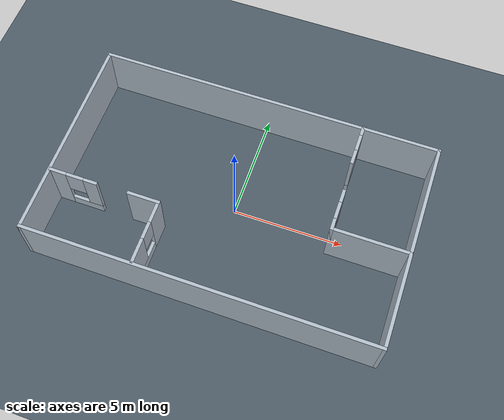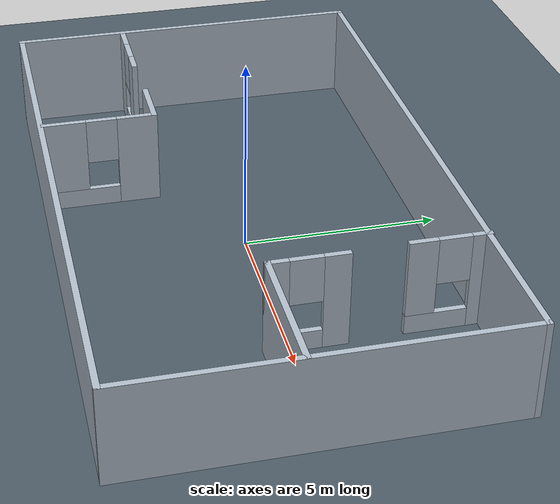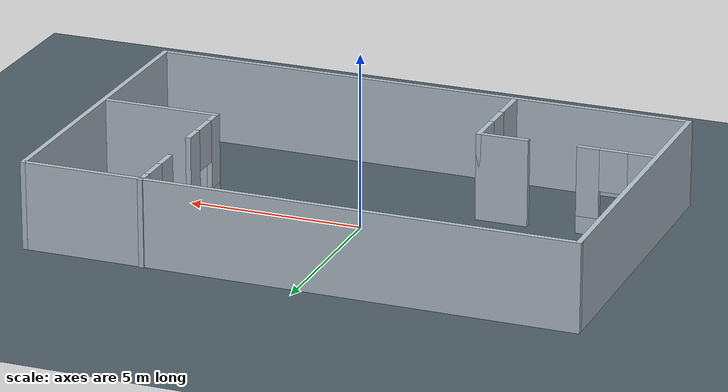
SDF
<sdf version="1.7">
 <world name="default">
  <physics name="1ms" type="ignored">
   <max_step_size>0.001</max_step_size>
   <real_time_factor>1.0</real_time_factor>
  </physics>
  <plugin filename="gz-sim-physics-system" name="gz::sim::systems::Physics"/>
  <plugin filename="gz-sim-sensors-system" name="gz::sim::systems::Sensors">
   <render_engine>ogre2</render_engine>
  </plugin>
  <plugin filename="gz-sim-user-commands-system" name="gz::sim::systems::UserCommands"/>
  <plugin filename="gz-sim-scene-broadcaster-system" name="gz::sim::systems::SceneBroadcaster"/>
  <light name="sun" type="directional">
   <pose>0 0 10 0 -0 0</pose>
   <diffuse>0.8 0.8 0.8 1</diffuse>
   <specular>0.2 0.2 0.2 1</specular>
   <attenuation>
    <range>1000</range>
    <constant>0.9</constant>
    <linear>0.01</linear>
    <quadratic>0.001</quadratic>
   </attenuation>
   <direction>-0.5 0.1 -0.9</direction>
   <spot><inner_angle>0</inner_angle><outer_angle>0</outer_angle><falloff>0</falloff></spot>
  </light>
  <model name="actor_tracking_proxy">
   <static>false</static>
   <pose>-4 2 0.85 0 0 0</pose>
   <link name="link">
    <gravity>false</gravity>
    <kinematic>true</kinematic>
    <collision name="collision">
     <geometry><box><size>0.45 0.45 1.7</size></box></geometry>
     <surface><contact><collide_bitmask>0</collide_bitmask></contact></surface>
    </collision>
   </link>
  </model>
  <model name="ground_plane">
   <static>1</static>
   <link name="link">
    <collision name="collision">
     <geometry><plane><normal>0 0 1</normal><size>100 100</size></plane></geometry>
     <surface><friction><ode><mu>100</mu><mu2>50</mu2></ode></friction></surface>
    </collision>
    <visual name="visual">
     <cast_shadows>0</cast_shadows>
     <geometry><plane><normal>0 0 1</normal><size>100 100</size></plane></geometry>
     <material>
      <ambient>0.16 0.20 0.22 1</ambient>
      <diffuse>0.30 0.36 0.40 1</diffuse>
      <specular>0.03 0.03 0.03 1</specular>
     </material>
    </visual>
   </link>
  </model>
  <gravity>0 0 -9.8</gravity>
  <magnetic_field>6e-06 2.3e-05 -4.2e-05</magnetic_field>
  <atmosphere type="adiabatic"/>
  <physics type="ode">
   <max_step_size>0.001</max_step_size>
   <real_time_factor>1</real_time_factor>
   <real_time_update_rate>1000</real_time_update_rate>
  </physics>
  <scene><ambient>0.4 0.4 0.4 1</ambient><background>0.7 0.7 0.7 1</background><shadows>1</shadows></scene>
  <audio><device>default</device></audio>
  <spherical_coordinates>
   <surface_model>EARTH_WGS84</surface_model>
   <latitude_deg>0</latitude_deg>
   <longitude_deg>0</longitude_deg>
   <elevation>0</elevation>
   <heading_deg>0</heading_deg>
  </spherical_coordinates>
  <model name="maze2">
   <pose>0.023581 -0.04716 0 0 -0 0</pose>
   <link name="Wall_1">
    <collision name="Wall_1_Collision">
     <geometry><box><size>15.75 0.15 2.5</size></box></geometry>
     <pose>0 0 1.25 0 -0 0</pose>
    </collision>
    <visual name="Wall_1_Visual">
     <pose>0 0 1.25 0 -0 0</pose>
     <geometry><box><size>15.75 0.15 2.5</size></box></geometry>
     <material>
      <ambient>0.45 0.50 0.55 1</ambient>
      <diffuse>0.70 0.75 0.80 1</diffuse>
      <specular>0.08 0.08 0.08 1</specular>
     </material>
     <meta><layer>0</layer></meta>
    </visual>
    <pose>0 -4.6956 0 0 -0 0</pose>
   </link>
   <link name="Wall_11">
    <pose>4.37491 3.7706 0 0 -0 -1.5708</pose>
    <visual name="Wall_11_Visual_0">
     <pose>-0.754199 0 1.25 0 -0 0</pose>
     <geometry><box><size>0.491601 0.15 2.5</size></box></geometry>
     <material>
      <ambient>0.45 0.50 0.55 1</ambient>
      <diffuse>0.70 0.75 0.80 1</diffuse>
      <specular>0.08 0.08 0.08 1</specular>
     </material>
     <meta><layer>0</layer></meta>
    </visual>
    <collision name="Wall_11_Collision_0">
     <geometry><box><size>0.491601 0.15 2.5</size></box></geometry>
     <pose>-0.754199 0 1.25 0 -0 0</pose>
    </collision>
    <visual name="Wall_11_Visual_1">
     <pose>0.245801 0 0.25 0 -0 0</pose>
     <geometry><box><size>1.5084 0.15 0.5</size></box></geometry>
     <material>
      <ambient>0.45 0.50 0.55 1</ambient>
      <diffuse>0.70 0.75 0.80 1</diffuse>
      <specular>0.08 0.08 0.08 1</specular>
     </material>
     <meta><layer>0</layer></meta>
    </visual>
    <collision name="Wall_11_Collision_1">
     <geometry><box><size>1.5084 0.15 0.5</size></box></geometry>
     <pose>0.245801 0 0.25 0 -0 0</pose>
    </collision>
    <visual name="Wall_11_Visual_2">
     <pose>0.645801 0 1.5 0 -0 0</pose>
     <geometry><box><size>0.708399 0.15 2</size></box></geometry>
     <material>
      <ambient>0.45 0.50 0.55 1</ambient>
      <diffuse>0.70 0.75 0.80 1</diffuse>
      <specular>0.08 0.08 0.08 1</specular>
     </material>
     <meta><layer>0</layer></meta>
    </visual>
    <collision name="Wall_11_Collision_2">
     <geometry><box><size>0.708399 0.15 2</size></box></geometry>
     <pose>0.645801 0 1.5 0 -0 0</pose>
    </collision>
    <visual name="Wall_11_Visual_3">
     <pose>-0.108399 0 1.9 0 -0 0</pose>
     <geometry><box><size>0.8 0.15 1.2</size></box></geometry>
     <material>
      <ambient>0.45 0.50 0.55 1</ambient>
      <diffuse>0.70 0.75 0.80 1</diffuse>
      <specular>0.08 0.08 0.08 1</specular>
     </material>
     <meta><layer>0</layer></meta>
    </visual>
    <collision name="Wall_11_Collision_3">
     <geometry><box><size>0.8 0.15 1.2</size></box></geometry>
     <pose>-0.108399 0 1.9 0 -0 0</pose>
    </collision>
   </link>
   <link name="Wall_13">
    <pose>4.43609 0.436265 0 0 -0 -1.5708</pose>
    <visual name="Wall_13_Visual_0">
     <pose>-0.683596 0 1.25 0 -0 0</pose>
     <geometry><box><size>0.632808 0.15 2.5</size></box></geometry>
     <material>
      <ambient>0.45 0.50 0.55 1</ambient>
      <diffuse>0.70 0.75 0.80 1</diffuse>
      <specular>0.08 0.08 0.08 1</specular>
     </material>
     <meta><layer>0</layer></meta>
    </visual>
    <collision name="Wall_13_Collision_0">
     <geometry><box><size>0.632808 0.15 2.5</size></box></geometry>
     <pose>-0.683596 0 1.25 0 -0 0</pose>
    </collision>
    <visual name="Wall_13_Visual_1">
     <pose>0.316404 0 0.25 0 -0 0</pose>
     <geometry><box><size>1.36719 0.15 0.5</size></box></geometry>
     <material>
      <ambient>0.45 0.50 0.55 1</ambient>
      <diffuse>0.70 0.75 0.80 1</diffuse>
      <specular>0.08 0.08 0.08 1</specular>
     </material>
     <meta><layer>0</layer></meta>
    </visual>
    <collision name="Wall_13_Collision_1">
     <geometry><box><size>1.36719 0.15 0.5</size></box></geometry>
     <pose>0.316404 0 0.25 0 -0 0</pose>
    </collision>
    <visual name="Wall_13_Visual_2">
     <pose>0.716404 0 1.5 0 -0 0</pose>
     <geometry><box><size>0.567192 0.15 2</size></box></geometry>
     <material>
      <ambient>0.45 0.50 0.55 1</ambient>
      <diffuse>0.70 0.75 0.80 1</diffuse>
      <specular>0.08 0.08 0.08 1</specular>
     </material>
     <meta><layer>0</layer></meta>
    </visual>
    <collision name="Wall_13_Collision_2">
     <geometry><box><size>0.567192 0.15 2</size></box></geometry>
     <pose>0.716404 0 1.5 0 -0 0</pose>
    </collision>
    <visual name="Wall_13_Visual_3">
     <pose>0.032808 0 1.9 0 -0 0</pose>
     <geometry><box><size>0.8 0.15 1.2</size></box></geometry>
     <material>
      <ambient>0.45 0.50 0.55 1</ambient>
      <diffuse>0.70 0.75 0.80 1</diffuse>
      <specular>0.08 0.08 0.08 1</specular>
     </material>
     <meta><layer>0</layer></meta>
    </visual>
    <collision name="Wall_13_Collision_3">
     <geometry><box><size>0.8 0.15 1.2</size></box></geometry>
     <pose>0.032808 0 1.9 0 -0 0</pose>
    </collision>
   </link>
   <link name="Wall_14">
    <collision name="Wall_14_Collision">
     <geometry><box><size>3.5 0.15 2.5</size></box></geometry>
     <pose>0 0 1.25 0 -0 0</pose>
    </collision>
    <visual name="Wall_14_Visual">
     <pose>0 0 1.25 0 -0 0</pose>
     <geometry><box><size>3.5 0.15 2.5</size></box></geometry>
     <material>
      <ambient>0.45 0.50 0.55 1</ambient>
      <diffuse>0.70 0.75 0.80 1</diffuse>
      <specular>0.08 0.08 0.08 1</specular>
     </material>
     <meta><layer>0</layer></meta>
    </visual>
    <pose>6.11109 -0.488735 0 0 -0 0</pose>
   </link>
   <link name="Wall_2">
    <collision name="Wall_2_Collision">
     <geometry><box><size>9.5 0.15 2.5</size></box></geometry>
     <pose>0 0 1.25 0 -0 0</pose>
    </collision>
    <visual name="Wall_2_Visual">
     <pose>0 0 1.25 0 -0 0</pose>
     <geometry><box><size>9.5 0.15 2.5</size></box></geometry>
     <material>
      <ambient>0.45 0.50 0.55 1</ambient>
      <diffuse>0.70 0.75 0.80 1</diffuse>
      <specular>0.08 0.08 0.08 1</specular>
     </material>
     <meta><layer>0</layer></meta>
    </visual>
    <pose>7.8 -0.0206 0 0 -0 1.5708</pose>
   </link>
   <link name="Wall_3">
    <collision name="Wall_3_Collision">
     <geometry><box><size>15.75 0.15 2.5</size></box></geometry>
     <pose>0 0 1.25 0 -0 0</pose>
    </collision>
    <visual name="Wall_3_Visual">
     <pose>0 0 1.25 0 -0 0</pose>
     <geometry><box><size>15.75 0.15 2.5</size></box></geometry>
     <material>
      <ambient>0.45 0.50 0.55 1</ambient>
      <diffuse>0.70 0.75 0.80 1</diffuse>
      <specular>0.08 0.08 0.08 1</specular>
     </material>
     <meta><layer>0</layer></meta>
    </visual>
    <pose>0 4.6544 0 0 -0 3.14159</pose>
   </link>
   <link name="Wall_4">
    <collision name="Wall_4_Collision">
     <geometry><box><size>9.5 0.15 2.5</size></box></geometry>
     <pose>0 0 1.25 0 -0 0</pose>
    </collision>
    <visual name="Wall_4_Visual">
     <pose>0 0 1.25 0 -0 0</pose>
     <geometry><box><size>9.5 0.15 2.5</size></box></geometry>
     <material>
      <ambient>0.45 0.50 0.55 1</ambient>
      <diffuse>0.70 0.75 0.80 1</diffuse>
      <specular>0.08 0.08 0.08 1</specular>
     </material>
     <meta><layer>0</layer></meta>
    </visual>
    <pose>-7.8 -0.0206 0 0 -0 -1.5708</pose>
   </link>
   <link name="Wall_6">
    <pose>-6.68882 -1.82012 0 0 -0 0</pose>
    <visual name="Wall_6_Visual_0">
     <pose>-0.721581 0 1.25 0 -0 0</pose>
     <geometry><box><size>0.806839 0.15 2.5</size></box></geometry>
     <material>
      <ambient>0.45 0.50 0.55 1</ambient>
      <diffuse>0.70 0.75 0.80 1</diffuse>
      <specular>0.08 0.08 0.08 1</specular>
     </material>
     <meta><layer>0</layer></meta>
    </visual>
    <collision name="Wall_6_Collision_0">
     <geometry><box><size>0.806839 0.15 2.5</size></box></geometry>
     <pose>-0.721581 0 1.25 0 -0 0</pose>
    </collision>
    <visual name="Wall_6_Visual_1">
     <pose>0.403419 0 0.25 0 -0 0</pose>
     <geometry><box><size>1.44316 0.15 0.5</size></box></geometry>
     <material>
      <ambient>0.45 0.50 0.55 1</ambient>
      <diffuse>0.70 0.75 0.80 1</diffuse>
      <specular>0.08 0.08 0.08 1</specular>
     </material>
     <meta><layer>0</layer></meta>
    </visual>
    <collision name="Wall_6_Collision_1">
     <geometry><box><size>1.44316 0.15 0.5</size></box></geometry>
     <pose>0.403419 0 0.25 0 -0 0</pose>
    </collision>
    <visual name="Wall_6_Visual_2">
     <pose>0.803419 0 1.5 0 -0 0</pose>
     <geometry><box><size>0.643161 0.15 2</size></box></geometry>
     <material>
      <ambient>0.45 0.50 0.55 1</ambient>
      <diffuse>0.70 0.75 0.80 1</diffuse>
      <specular>0.08 0.08 0.08 1</specular>
     </material>
     <meta><layer>0</layer></meta>
    </visual>
    <collision name="Wall_6_Collision_2">
     <geometry><box><size>0.643161 0.15 2</size></box></geometry>
     <pose>0.803419 0 1.5 0 -0 0</pose>
    </collision>
    <visual name="Wall_6_Visual_3">
     <pose>0.081839 0 1.9 0 -0 0</pose>
     <geometry><box><size>0.8 0.15 1.2</size></box></geometry>
     <material>
      <ambient>0.45 0.50 0.55 1</ambient>
      <diffuse>0.70 0.75 0.80 1</diffuse>
      <specular>0.08 0.08 0.08 1</specular>
     </material>
     <meta><layer>0</layer></meta>
    </visual>
    <collision name="Wall_6_Collision_3">
     <geometry><box><size>0.8 0.15 1.2</size></box></geometry>
     <pose>0.081839 0 1.9 0 -0 0</pose>
    </collision>
   </link>
   <link name="Wall_8">
    <collision name="Wall_8_Collision">
     <geometry><box><size>1.5 0.15 2.5</size></box></geometry>
     <pose>0 0 1.25 0 -0 0</pose>
    </collision>
    <visual name="Wall_8_Visual">
     <pose>0 0 1.25 0 -0 0</pose>
     <geometry><box><size>1.5 0.15 2.5</size></box></geometry>
     <material>
      <ambient>0.45 0.50 0.55 1</ambient>
      <diffuse>0.70 0.75 0.80 1</diffuse>
      <specular>0.08 0.08 0.08 1</specular>
     </material>
     <meta><layer>0</layer></meta>
    </visual>
    <pose>-3.45417 -1.75894 0 0 -0 0</pose>
   </link>
   <link name="Wall_9">
    <pose>-2.77917 -3.18394 0 0 -0 -1.5708</pose>
    <visual name="Wall_9_Visual_0">
     <pose>-0.97422 0 1.25 0 -0 0</pose>
     <geometry><box><size>1.05156 0.15 2.5</size></box></geometry>
     <material>
      <ambient>0.45 0.50 0.55 1</ambient>
      <diffuse>0.70 0.75 0.80 1</diffuse>
      <specular>0.08 0.08 0.08 1</specular>
     </material>
     <meta><layer>0</layer></meta>
    </visual>
    <collision name="Wall_9_Collision_0">
     <geometry><box><size>1.05156 0.15 2.5</size></box></geometry>
     <pose>-0.97422 0 1.25 0 -0 0</pose>
    </collision>
    <visual name="Wall_9_Visual_1">
     <pose>0.52578 0 0.25 0 -0 0</pose>
     <geometry><box><size>1.94844 0.15 0.5</size></box></geometry>
     <material>
      <ambient>0.45 0.50 0.55 1</ambient>
      <diffuse>0.70 0.75 0.80 1</diffuse>
      <specular>0.08 0.08 0.08 1</specular>
     </material>
     <meta><layer>0</layer></meta>
    </visual>
    <collision name="Wall_9_Collision_1">
     <geometry><box><size>1.94844 0.15 0.5</size></box></geometry>
     <pose>0.52578 0 0.25 0 -0 0</pose>
    </collision>
    <visual name="Wall_9_Visual_2">
     <pose>0.92578 0 1.5 0 -0 0</pose>
     <geometry><box><size>1.14844 0.15 2</size></box></geometry>
     <material>
      <ambient>0.45 0.50 0.55 1</ambient>
      <diffuse>0.70 0.75 0.80 1</diffuse>
      <specular>0.08 0.08 0.08 1</specular>
     </material>
     <meta><layer>0</layer></meta>
    </visual>
    <collision name="Wall_9_Collision_2">
     <geometry><box><size>1.14844 0.15 2</size></box></geometry>
     <pose>0.92578 0 1.5 0 -0 0</pose>
    </collision>
    <visual name="Wall_9_Visual_3">
     <pose>-0.04844 0 1.9 0 -0 0</pose>
     <geometry><box><size>0.8 0.15 1.2</size></box></geometry>
     <material>
      <ambient>0.45 0.50 0.55 1</ambient>
      <diffuse>0.70 0.75 0.80 1</diffuse>
      <specular>0.08 0.08 0.08 1</specular>
     </material>
     <meta><layer>0</layer></meta>
    </visual>
    <collision name="Wall_9_Collision_3">
     <geometry><box><size>0.8 0.15 1.2</size></box></geometry>
     <pose>-0.04844 0 1.9 0 -0 0</pose>
    </collision>
   </link>
   <static>1</static>
  </model>
 </world>
</sdf>
